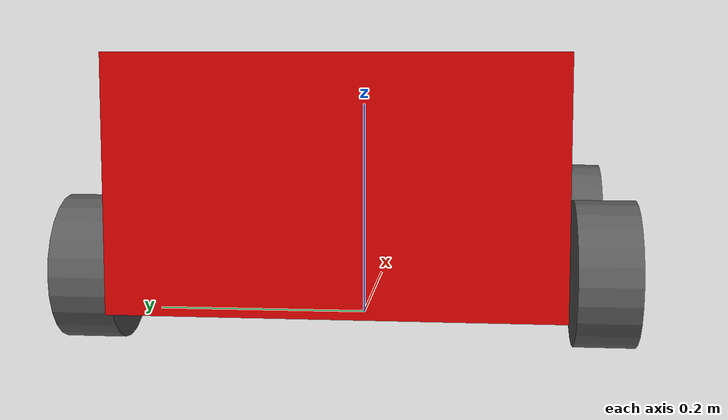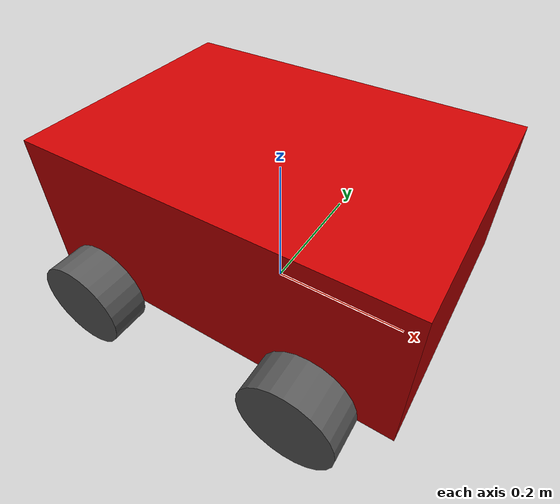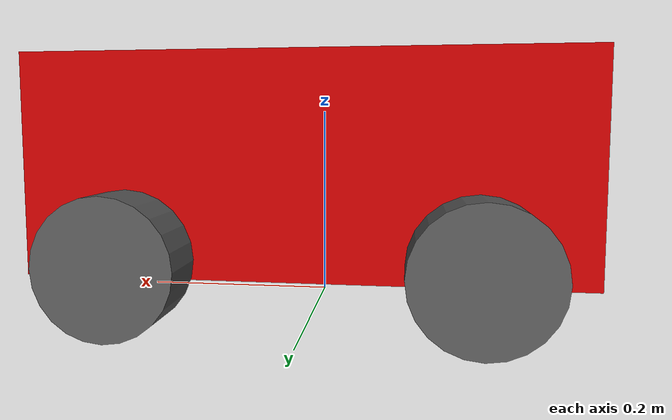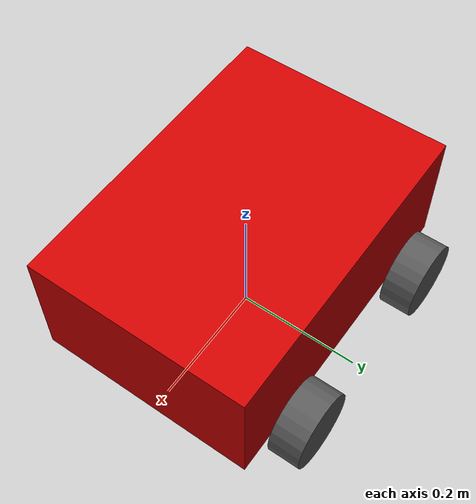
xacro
<?xml version="1.0"?>
<robot name="robot" xmlns:xacro="http://www.ros.org/wiki/xacro">

  <link name="base_footprint" />

  <link name="base_link">
    <inertial>
      <origin xyz="0 0 0" rpy="0 0 0" />
      <mass value="10" />
      <inertia ixx="1e-1"  ixy="0"  ixz="0" iyy="1e-1" iyz="0" izz="1e-1" />
    </inertial>
    <visual>
      <geometry>
        <box size="0.5 0.35 0.2" />
      </geometry>
      <material name="red">
        <color rgba="0.8 0.0 0.0 1.0" />
      </material>
    </visual>
    <collision>
      <geometry>
        <box size="0.5 0.35 0.2" />
      </geometry>
    </collision>
  </link>
  <joint name="base" type="fixed">
    <parent link="base_footprint" />
    <child link="base_link" />
    <origin xyz="0 0 0.15" />
  </joint>

  <xacro:macro name="wheel" params="prefix xreflect yreflect">
    <link name="${prefix}_wheel_link">
      <inertial>
        <origin xyz="0 0 0" rpy="0 0 0" />
        <mass value="1" />
        <inertia ixx="1e-3"  ixy="0"  ixz="0" iyy="1e-3" iyz="0" izz="1e-3" />
      </inertial>
      <visual>
        <origin xyz="0 0 0" rpy="${pi/2} 0 0" />
        <geometry>
          <cylinder length="0.05" radius="0.06" />
        </geometry>
        <material name="gray">
          <color rgba="0.35 0.35 0.35 1.0" />
        </material>
      </visual>
      <collision>
        <origin xyz="0 0 0" rpy="${pi/2} 0 0" />
        <geometry>
          <cylinder length="0.05" radius="0.06" />
        </geometry>
      </collision>
    </link>
    <joint name="${prefix}_wheel" type="continuous">
      <parent link="base_link" />
      <child link="${prefix}_wheel_link" />
      <origin xyz="${xreflect*0.15} ${yreflect*0.21} -0.08" />
      <axis xyz="0 -1 0" />
    </joint>
  </xacro:macro>

  <xacro:wheel prefix="front_left" xreflect="1" yreflect="1" />
  <xacro:wheel prefix="front_right" xreflect="1" yreflect="-1" />
  <xacro:wheel prefix="rear_left" xreflect="-1" yreflect="1" />
  <xacro:wheel prefix="rear_right" xreflect="-1" yreflect="-1" />

</robot>
